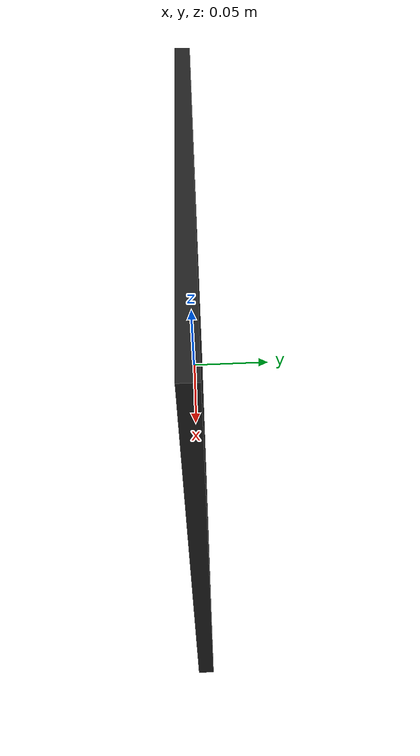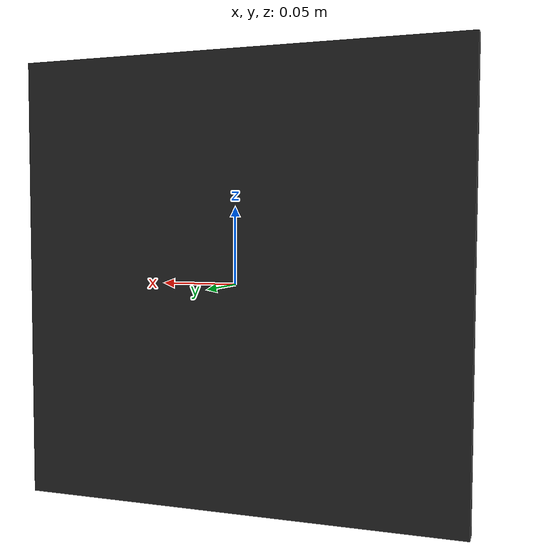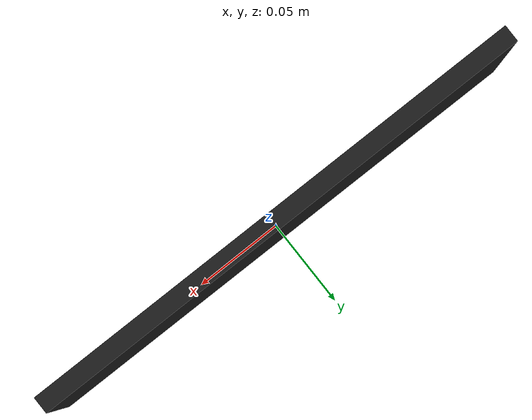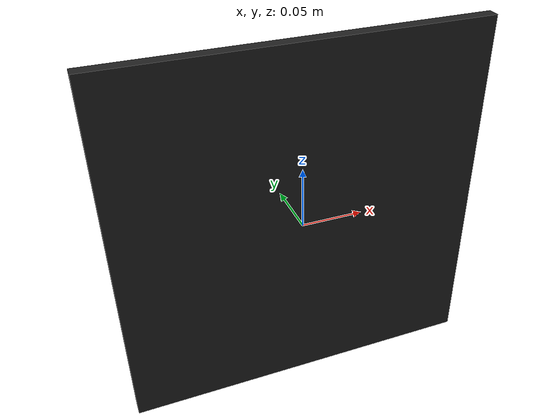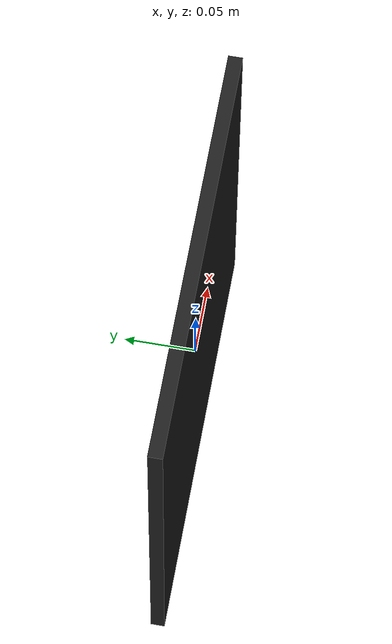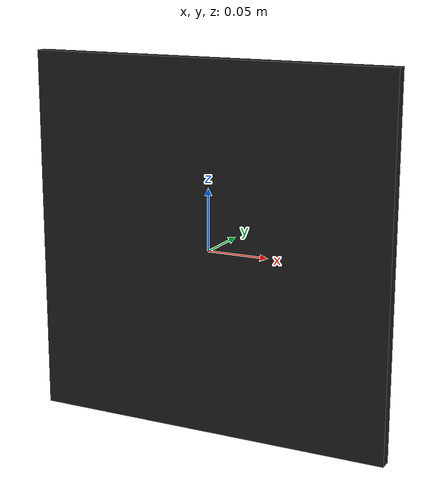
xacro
<?xml version="1.0" ?>
<robot name="barbie" xmlns:xacro="http://ros.org/wiki/xacro">

  <gazebo reference="base_link">
    <material>BarbieTexture</material>
  </gazebo>

  <link name="world"/>

  <joint name="base_joint" type="fixed">
    <parent link="world"/>
    <child link="base_link"/>
    <origin xyz="0 0 0" rpy="0 0 0"/>
  </joint>

  <link name="base_link">
    <visual>
      <origin xyz="0 0 0 " rpy="0 0 0"/>
      <geometry>
        <box size="0.3 0.01 0.3"/>
      </geometry>
      <material name="light_black"/>
    </visual>
    <inertial>
      <origin xyz="0 0 0" rpy="0 0 0"/>
      <mass value="1"/>
      <inertia ixx="1" ixy="0" ixz="0"
               iyy="1" iyz="0"
               izz="1" />
    </inertial>
    <collision>
      <origin xyz="0 0 0 " rpy="0 0 0"/>
      <geometry>
        <box size="0.3 0.01 0.3"/>
      </geometry>
    </collision>
  </link>
</robot>
